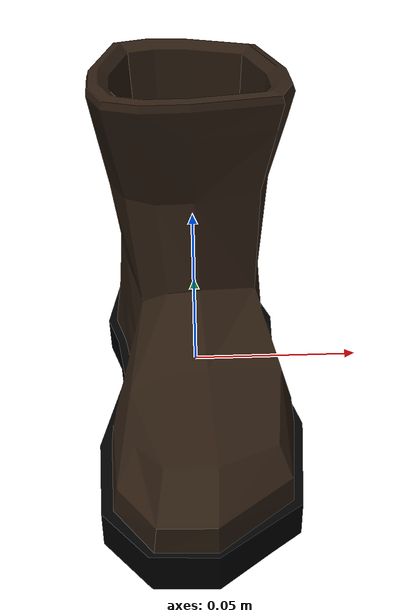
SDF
<?xml version="1.0" ?>

<sdf version="1.4">
  <model name="iai_shoe">
    <static>true</static>
    <link name="iai_shoe">
      <collision name="collision">
	<geometry>
            <mesh>
	      <uri>model://shoe/shoe.dae</uri>
	    </mesh>
          </geometry>
      </collision>
      <visual name="vis">
        <cast_shadows>false</cast_shadows>

	<geometry>
            <mesh>
	      <uri>model://shoe/shoe.dae</uri>
	    </mesh>
          </geometry>
      </visual>

    </link>
          <plugin name="scanable"
              filename="libiai_object_transmitter.so">
            <object_type>terrain</object_type><!-- this is used to determine -->
            <absolute_detection>true</absolute_detection>
            <attribute key="otype" value="shoe"/>
            <attribute key="manmade" value="true"/>
            <attribute key="navigation" value="inner"/>
      </plugin>
  </model>
</sdf>
